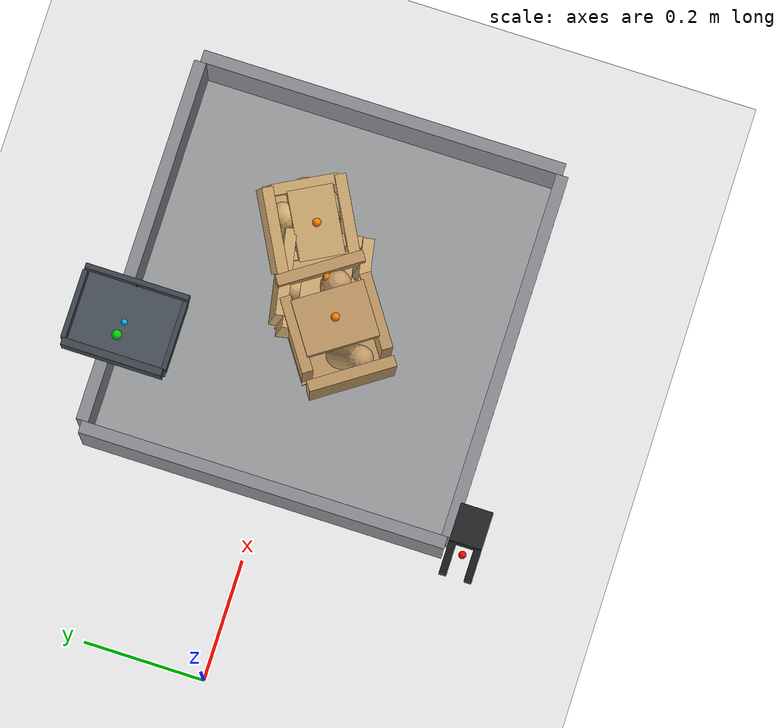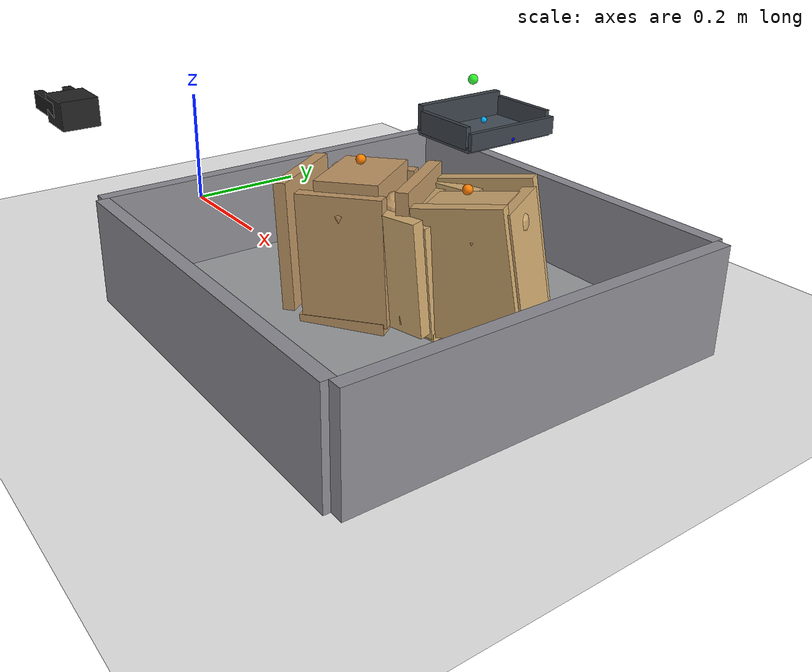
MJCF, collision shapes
<mujoco model="low_fill_top_collapsed_partially_buried_ep0_try0">
  <compiler angle="radian" coordinate="local" inertiafromgeom="true" meshdir="D:/Michael/2025/01.Research/01.Parceldetection/16.Pybullet/bullet3-master (1)/bullet3-master/examples/pybullet/examples/DeformableTest/Sackcodex2/object"/>
  <option timestep="0.002" gravity="0 0 -9.81" integrator="implicitfast" iterations="100" tolerance="1e-8"/>
  <size memory="768M" nconmax="12000"/>

  <visual>
    <global azimuth="128" elevation="-20"/>
    <headlight ambient="0.34 0.34 0.34" diffuse="0.78 0.78 0.78" specular="0.15 0.15 0.15"/>
    <rgba haze="0.11 0.13 0.18 1"/>
  </visual>

  <default>
    <geom condim="4" friction="1.15 0.03 0.01" margin="0.003" solimp="0.93 0.98 0.003" solref="0.012 1"/>
    <joint damping="1.2" armature="0.002"/>
    <position kp="2500" forcelimited="true" forcerange="-420 420"/>
    <motor ctrllimited="true"/>
  </default>

  <asset>
    <mesh name="sack_0_visual_mesh" file="sack10.obj" scale="0.0714 0.0714 0.0742"/>
    <mesh name="sack_1_visual_mesh" file="sack.obj" scale="0.0693 0.0693 0.0702"/>
    <mesh name="sack_2_visual_mesh" file="sack3.obj" scale="0.0735 0.0735 0.0762"/>
  </asset>

  <worldbody>
    <light name="key" pos="0.85 0.15 1.8" dir="-0.2 -0.1 -1" directional="true"/>
    <geom name="floor" type="plane" size="2 2 0.1" rgba="0.93 0.93 0.93 1"/>
    <geom name="work_pad" type="box" pos="0.62 0 0.012" size="0.30 0.30 0.012" rgba="0.60 0.61 0.62 1" friction="1.4 0.05 0.01"/>
    <geom name="corral_front" type="box" pos="0.93 0.00 0.08" size="0.010 0.30 0.08" rgba="0.55 0.55 0.58 0.22" friction="1.0 0.03 0.01"/>
    <geom name="corral_back" type="box" pos="0.31 0.00 0.08" size="0.010 0.30 0.08" rgba="0.55 0.55 0.58 0.18" friction="1.0 0.03 0.01"/>
    <geom name="corral_left" type="box" pos="0.62 0.30 0.08" size="0.30 0.010 0.08" rgba="0.55 0.55 0.58 0.14" friction="1.0 0.03 0.01"/>
    <geom name="corral_right" type="box" pos="0.62 -0.30 0.08" size="0.30 0.010 0.08" rgba="0.55 0.55 0.58 0.14" friction="1.0 0.03 0.01"/>
    <camera name="overview" pos="1.22 0.00 0.92" xyaxes="0 1 0 -0.46 0 0.88"/>

    <body name="gripper_mocap" mocap="true" pos="0.36 -0.33 0.30" quat="0.707107 0 -0.707107 0"/>
    <body name="scoop_mocap" mocap="true" pos="0.42 0.28 0.20" quat="1 0 0 0"/>

    <body name="gripper_ctrl_base" pos="0.36 -0.33 0.30">
      <inertial pos="0 0 0" mass="0.001" diaginertia="1e-6 1e-6 1e-6"/>
      <joint name="gripper_ctrl_x" type="slide" axis="1 0 0" limited="true" range="0.20 1.00"/>
      <body name="gripper_ctrl_y_body">
        <inertial pos="0 0 0" mass="0.001" diaginertia="1e-6 1e-6 1e-6"/>
        <joint name="gripper_ctrl_y" type="slide" axis="0 1 0" limited="true" range="-0.60 0.60"/>
        <body name="gripper_ctrl_z_body">
          <inertial pos="0 0 0" mass="0.001" diaginertia="1e-6 1e-6 1e-6"/>
          <joint name="gripper_ctrl_z" type="slide" axis="0 0 1" limited="true" range="0.04 0.70"/>
          <body name="gripper_ctrl_yaw_body">
            <inertial pos="0 0 0" mass="0.001" diaginertia="1e-6 1e-6 1e-6"/>
            <joint name="gripper_ctrl_yaw" type="hinge" axis="0 0 1" limited="true" range="-3.1416 3.1416"/>
            <body name="gripper_ctrl_pitch_body">
              <inertial pos="0 0 0" mass="0.001" diaginertia="1e-6 1e-6 1e-6"/>
              <joint name="gripper_ctrl_pitch" type="hinge" axis="0 1 0" limited="true" range="-3.1416 3.1416"/>
              <body name="gripper_ctrl_roll_body">
                <inertial pos="0 0 0" mass="0.001" diaginertia="1e-6 1e-6 1e-6"/>
                <joint name="gripper_ctrl_roll" type="hinge" axis="1 0 0" limited="true" range="-3.1416 3.1416"/>
              </body>
            </body>
          </body>
        </body>
      </body>
    </body>

    <body name="scoop_ctrl_base" pos="0.42 0.28 0.20">
      <inertial pos="0 0 0" mass="0.001" diaginertia="1e-6 1e-6 1e-6"/>
      <joint name="scoop_ctrl_x" type="slide" axis="1 0 0" limited="true" range="0.20 1.00"/>
      <body name="scoop_ctrl_y_body">
        <inertial pos="0 0 0" mass="0.001" diaginertia="1e-6 1e-6 1e-6"/>
        <joint name="scoop_ctrl_y" type="slide" axis="0 1 0" limited="true" range="-0.60 0.60"/>
        <body name="scoop_ctrl_z_body">
          <inertial pos="0 0 0" mass="0.001" diaginertia="1e-6 1e-6 1e-6"/>
          <joint name="scoop_ctrl_z" type="slide" axis="0 0 1" limited="true" range="0.04 0.70"/>
          <body name="scoop_ctrl_yaw_body">
            <inertial pos="0 0 0" mass="0.001" diaginertia="1e-6 1e-6 1e-6"/>
            <joint name="scoop_ctrl_yaw" type="hinge" axis="0 0 1" limited="true" range="-3.1416 3.1416"/>
            <body name="scoop_ctrl_pitch_body">
              <inertial pos="0 0 0" mass="0.001" diaginertia="1e-6 1e-6 1e-6"/>
              <joint name="scoop_ctrl_pitch" type="hinge" axis="0 1 0" limited="true" range="-3.1416 3.1416"/>
              <body name="scoop_ctrl_roll_body">
                <inertial pos="0 0 0" mass="0.001" diaginertia="1e-6 1e-6 1e-6"/>
                <joint name="scoop_ctrl_roll" type="hinge" axis="1 0 0" limited="true" range="-3.1416 3.1416"/>
              </body>
            </body>
          </body>
        </body>
      </body>
    </body>

    <body name="gripper_tool" pos="0.36 -0.33 0.30" quat="0.707107 0 -0.707107 0">
      <freejoint name="gripper_tool_free"/>
      <inertial pos="0 0 0.04" mass="0.08" diaginertia="0.0002 0.0002 0.0002"/>
      <geom name="gripper_palm" type="box" pos="0 0 0.030" size="0.020 0.026 0.030" rgba="0.14 0.14 0.14 1"/>
      <body name="left_finger_body" pos="0 0 0.072">
        <joint name="left_finger_slide" type="slide" axis="0 1 0" limited="true" range="0.010 0.040" damping="12"/>
        <geom name="left_finger_geom" type="box" pos="0 0.020 0" size="0.012 0.006 0.040" rgba="0.10 0.10 0.10 1" friction="2.2 0.05 0.01"/>
      </body>
      <body name="right_finger_body" pos="0 0 0.072">
        <joint name="right_finger_slide" type="slide" axis="0 -1 0" limited="true" range="0.010 0.040" damping="12"/>
        <geom name="right_finger_geom" type="box" pos="0 -0.020 0" size="0.012 0.006 0.040" rgba="0.10 0.10 0.10 1" friction="2.2 0.05 0.01"/>
      </body>
      <site name="gripper_pinch_site" pos="0 0 0.074" size="0.006" rgba="1 0 0 1"/>
    </body>

    <body name="scoop_tool" pos="0.42 0.28 0.20" quat="1 0 0 0">
      <freejoint name="scoop_tool_free"/>
      <inertial pos="0 0 0.02" mass="0.10" diaginertia="0.0003 0.0003 0.0003"/>
      <geom name="scoop_plate" type="box" pos="0.062 0 0" size="0.062 0.085 0.004" rgba="0.28 0.31 0.35 1" friction="1.7 0.05 0.01"/>
      <geom name="scoop_lip" type="box" pos="0.126 0 0.014" size="0.004 0.085 0.014" rgba="0.24 0.27 0.30 1" friction="1.7 0.05 0.01"/>
      <geom name="scoop_left_rail" type="box" pos="0.062 0.082 0.018" size="0.056 0.004 0.018" rgba="0.24 0.27 0.30 1"/>
      <geom name="scoop_right_rail" type="box" pos="0.062 -0.082 0.018" size="0.056 0.004 0.018" rgba="0.24 0.27 0.30 1"/>
      <geom name="scoop_backstop" type="box" pos="0.000 0 0.022" size="0.006 0.082 0.022" rgba="0.24 0.27 0.30 1"/>
      <site name="scoop_tip_site" pos="0.126 0 0.005" size="0.005" rgba="0 0 1 1"/>
      <site name="scoop_center_site" pos="0.060 0 0.020" size="0.005" rgba="0 0.7 1 1"/>
      <site name="score_overlay_site" pos="0.030 0 0.080" size="0.008" rgba="0 1 0 0.8"/>
    </body>

    <body name="sack_0" pos="0.6481 0.0153 0.1097" euler="0.0875 -0.0246 -2.9508">
      <freejoint name="sack_0_free"/>

      <geom name="sack_0_visual" type="mesh" mesh="sack_0_visual_mesh" rgba="0.820 0.670 0.440 0.92" contype="0" conaffinity="0"/>
      <site name="sack_0_center_site" pos="0 0 0.000" size="0.006" rgba="0 1 0 1"/>
      <site name="sack_0_top_site" pos="0 0.0060 0.0883" size="0.007" rgba="1 0.5 0 1"/>
      <site name="sack_0_side_site" pos="0.0140 0.0487 0.018" size="0.007" rgba="1 0.8 0 1"/>

      <geom name="sack_0_core_geom" type="ellipsoid" pos="0 0 0.0057" size="0.0454 0.0354 0.0675" mass="0.6764" rgba="0.820 0.670 0.440 0.12" friction="1.0 0.03 0.01"/>
      <geom name="sack_0_core_front" type="capsule" fromto="-0.0060 0 -0.0200 0.0590 0 0.0600" size="0.0300" mass="0.1611" rgba="0.820 0.670 0.440 0.10"/>
      <geom name="sack_0_core_left" type="capsule" fromto="-0.008 0.0243 -0.010 0.018 0.0423 0.060" size="0.0240" mass="0.2899" rgba="0.820 0.670 0.440 0.10"/>
      <geom name="sack_0_core_right" type="capsule" fromto="-0.006 -0.0243 -0.008 0.020 -0.0443 0.054" size="0.0221" mass="0.2899" rgba="0.820 0.670 0.440 0.10"/>

      <body name="sack_0_bottom_support_proxy_body" pos="0 -0.0021 -0.0842">
        <joint name="sack_0_bottom_x" type="slide" axis="1 0 0" limited="true" range="-0.012 0.012" damping="18" stiffness="459.1"/>
        <joint name="sack_0_bottom_y" type="slide" axis="0 1 0" limited="true" range="-0.012 0.012" damping="18" stiffness="459.1"/>
        <joint name="sack_0_bottom_z" type="slide" axis="0 0 1" limited="true" range="-0.008 0.020" damping="24" stiffness="565.5"/>
        <geom name="sack_0_bottom_support_proxy" type="box" size="0.0729 0.0547 0.0100" mass="0.1288" rgba="0.820 0.670 0.440 0.34" friction="1.55 0.05 0.01"/>
      </body>

      <body name="sack_0_top_grasp_proxy_body" pos="0.0140 0.0060 0.0583">
        <joint name="sack_0_top_x" type="slide" axis="1 0 0" limited="true" range="-0.018 0.018" damping="12" stiffness="176.3"/>
        <joint name="sack_0_top_y" type="slide" axis="0 1 0" limited="true" range="-0.018 0.018" damping="12" stiffness="176.3"/>
        <joint name="sack_0_top_z" type="slide" axis="0 0 1" limited="true" range="-0.040 0.010" damping="14" stiffness="129.7"/>
        <geom name="sack_0_top_grasp_proxy" type="box" size="0.0569 0.0387 0.0150" mass="0.0966" rgba="0.820 0.670 0.440 0.26" friction="2.2 0.05 0.01"/>
      </body>

      <body name="sack_0_left_side_proxy_body" pos="0 0.0631 0.010">
        <joint name="sack_0_left_side_slide" type="slide" axis="0 -1 0" limited="true" range="-0.028 0.016" damping="16" stiffness="228.3"/>
        <geom name="sack_0_left_side_proxy" type="box" size="0.0689 0.0090 0.0822" mass="0.0966" rgba="0.820 0.670 0.440 0.24"/>
      </body>

      <body name="sack_0_right_side_proxy_body" pos="0 -0.0591 0.010">
        <joint name="sack_0_right_side_slide" type="slide" axis="0 1 0" limited="true" range="-0.028 0.016" damping="16" stiffness="211.7"/>
        <geom name="sack_0_right_side_proxy" type="box" size="0.0689 0.0090 0.0822" mass="0.0966" rgba="0.820 0.670 0.440 0.24"/>
      </body>

      <body name="sack_0_front_proxy_body" pos="0.0769 0 0.000">
        <joint name="sack_0_front_slide" type="slide" axis="-1 0 0" limited="true" range="-0.022 0.012" damping="15" stiffness="219.5"/>
        <geom name="sack_0_front_support_proxy" type="box" size="0.0090 0.0547 0.0802" mass="0.0805" rgba="0.820 0.670 0.440 0.22"/>
      </body>

      <body name="sack_0_back_proxy_body" pos="-0.0629 0 0.000">
        <joint name="sack_0_back_slide" type="slide" axis="1 0 0" limited="true" range="-0.022 0.012" damping="15" stiffness="202.9"/>
        <geom name="sack_0_back_support_proxy" type="box" size="0.0090 0.0547 0.0802" mass="0.0805" rgba="0.820 0.670 0.440 0.22"/>
      </body>

      <body name="sack_0_shape_proxy_body" pos="0.0084 0.0163 0.0403">
        <joint name="sack_0_bulge_y" type="slide" axis="0 1 0" limited="true" range="-0.020 0.020" damping="8" stiffness="100.6"/>
        <joint name="sack_0_bulge_z" type="slide" axis="0 0 1" limited="true" range="-0.014 0.028" damping="8" stiffness="100.5"/>
        <geom name="sack_0_shape_proxy" type="ellipsoid" size="0.0200 0.0161 0.0263" mass="0.0644" rgba="0.820 0.670 0.440 0.28"/>
      </body>
    </body>

    <body name="sack_1" pos="0.7311 0.0590 0.1197" euler="0.1057 -0.1276 0.5033">
      <freejoint name="sack_1_free"/>

      <geom name="sack_1_visual" type="mesh" mesh="sack_1_visual_mesh" rgba="0.820 0.670 0.440 0.92" contype="0" conaffinity="0"/>
      <site name="sack_1_center_site" pos="0 0 0.000" size="0.006" rgba="0 1 0 1"/>
      <site name="sack_1_top_site" pos="0 -0.0060 0.1059" size="0.007" rgba="1 0.5 0 1"/>
      <site name="sack_1_side_site" pos="0.0000 -0.0465 0.018" size="0.007" rgba="1 0.8 0 1"/>

      <geom name="sack_1_core_geom" type="ellipsoid" pos="0 0 0.0057" size="0.0447 0.0344 0.0660" mass="0.8050" rgba="0.820 0.670 0.440 0.12" friction="1.0 0.03 0.01"/>
      <geom name="sack_1_core_front" type="capsule" fromto="-0.0200 0 -0.0200 0.0450 0 0.0600" size="0.0291" mass="0.1917" rgba="0.820 0.670 0.440 0.10"/>
      <geom name="sack_1_core_left" type="capsule" fromto="-0.008 0.0233 -0.010 0.018 0.0413 0.060" size="0.0240" mass="0.3450" rgba="0.820 0.670 0.440 0.10"/>
      <geom name="sack_1_core_right" type="capsule" fromto="-0.006 -0.0233 -0.008 0.020 -0.0433 0.054" size="0.0220" mass="0.3450" rgba="0.820 0.670 0.440 0.10"/>

      <body name="sack_1_bottom_support_proxy_body" pos="0 0.0046 -0.0935">
        <joint name="sack_1_bottom_x" type="slide" axis="1 0 0" limited="true" range="-0.012 0.012" damping="18" stiffness="432.5"/>
        <joint name="sack_1_bottom_y" type="slide" axis="0 1 0" limited="true" range="-0.012 0.012" damping="18" stiffness="432.5"/>
        <joint name="sack_1_bottom_z" type="slide" axis="0 0 1" limited="true" range="-0.008 0.020" damping="24" stiffness="533.1"/>
        <geom name="sack_1_bottom_support_proxy" type="box" size="0.0721 0.0525 0.0100" mass="0.1533" rgba="0.820 0.670 0.440 0.34" friction="1.55 0.05 0.01"/>
      </body>

      <body name="sack_1_top_grasp_proxy_body" pos="0.0000 -0.0060 0.0759">
        <joint name="sack_1_top_x" type="slide" axis="1 0 0" limited="true" range="-0.018 0.018" damping="12" stiffness="166.0"/>
        <joint name="sack_1_top_y" type="slide" axis="0 1 0" limited="true" range="-0.018 0.018" damping="12" stiffness="166.0"/>
        <joint name="sack_1_top_z" type="slide" axis="0 0 1" limited="true" range="-0.040 0.010" damping="14" stiffness="120.8"/>
        <geom name="sack_1_top_grasp_proxy" type="box" size="0.0561 0.0365 0.0150" mass="0.1150" rgba="0.820 0.670 0.440 0.26" friction="2.2 0.05 0.01"/>
      </body>

      <body name="sack_1_left_side_proxy_body" pos="0 0.0598 0.010">
        <joint name="sack_1_left_side_slide" type="slide" axis="0 -1 0" limited="true" range="-0.028 0.016" damping="16" stiffness="210.8"/>
        <geom name="sack_1_left_side_proxy" type="box" size="0.0681 0.0090 0.0915" mass="0.1150" rgba="0.820 0.670 0.440 0.24"/>
      </body>

      <body name="sack_1_right_side_proxy_body" pos="0 -0.0558 0.010">
        <joint name="sack_1_right_side_slide" type="slide" axis="0 1 0" limited="true" range="-0.028 0.016" damping="16" stiffness="195.7"/>
        <geom name="sack_1_right_side_proxy" type="box" size="0.0681 0.0090 0.0915" mass="0.1150" rgba="0.820 0.670 0.440 0.24"/>
      </body>

      <body name="sack_1_front_proxy_body" pos="0.0621 0 0.000">
        <joint name="sack_1_front_slide" type="slide" axis="-1 0 0" limited="true" range="-0.022 0.012" damping="15" stiffness="206.3"/>
        <geom name="sack_1_front_support_proxy" type="box" size="0.0090 0.0525 0.0895" mass="0.0958" rgba="0.820 0.670 0.440 0.22"/>
      </body>

      <body name="sack_1_back_proxy_body" pos="-0.0621 0 0.000">
        <joint name="sack_1_back_slide" type="slide" axis="1 0 0" limited="true" range="-0.022 0.012" damping="15" stiffness="191.1"/>
        <geom name="sack_1_back_support_proxy" type="box" size="0.0090 0.0525 0.0895" mass="0.0958" rgba="0.820 0.670 0.440 0.22"/>
      </body>

      <body name="sack_1_shape_proxy_body" pos="0.0000 -0.0153 0.0492">
        <joint name="sack_1_bulge_y" type="slide" axis="0 1 0" limited="true" range="-0.020 0.020" damping="8" stiffness="118.3"/>
        <joint name="sack_1_bulge_z" type="slide" axis="0 0 1" limited="true" range="-0.014 0.028" damping="8" stiffness="113.7"/>
        <geom name="sack_1_shape_proxy" type="ellipsoid" size="0.0200 0.0161 0.0262" mass="0.0767" rgba="0.820 0.670 0.440 0.28"/>
      </body>
    </body>

    <body name="sack_2" pos="0.5859 -0.0321 0.1214" euler="0.0198 -0.0500 -0.9736">
      <freejoint name="sack_2_free"/>

      <geom name="sack_2_visual" type="mesh" mesh="sack_2_visual_mesh" rgba="0.760 0.600 0.400 0.92" contype="0" conaffinity="0"/>
      <site name="sack_2_center_site" pos="0 0 0.000" size="0.006" rgba="0 1 0 1"/>
      <site name="sack_2_top_site" pos="0 0.0060 0.1205" size="0.007" rgba="1 0.5 0 1"/>
      <site name="sack_2_side_site" pos="0.0000 0.0557 0.018" size="0.007" rgba="1 0.8 0 1"/>

      <geom name="sack_2_core_geom" type="ellipsoid" pos="0 0 0.0058" size="0.0443 0.0343 0.0774" mass="0.8389" rgba="0.760 0.600 0.400 0.12" friction="1.0 0.03 0.01"/>
      <geom name="sack_2_core_front" type="capsule" fromto="-0.0200 0 -0.0200 0.0450 0 0.0600" size="0.0299" mass="0.1997" rgba="0.760 0.600 0.400 0.10"/>
      <geom name="sack_2_core_left" type="capsule" fromto="-0.008 0.0422 -0.010 0.018 0.0602 0.060" size="0.0242" mass="0.3595" rgba="0.760 0.600 0.400 0.10"/>
      <geom name="sack_2_core_right" type="capsule" fromto="-0.006 -0.0422 -0.008 0.020 -0.0622 0.054" size="0.0223" mass="0.3595" rgba="0.760 0.600 0.400 0.10"/>

      <body name="sack_2_bottom_support_proxy_body" pos="0 -0.0046 -0.0947">
        <joint name="sack_2_bottom_x" type="slide" axis="1 0 0" limited="true" range="-0.012 0.012" damping="18" stiffness="456.5"/>
        <joint name="sack_2_bottom_y" type="slide" axis="0 1 0" limited="true" range="-0.012 0.012" damping="18" stiffness="456.5"/>
        <joint name="sack_2_bottom_z" type="slide" axis="0 0 1" limited="true" range="-0.008 0.020" damping="24" stiffness="562.4"/>
        <geom name="sack_2_bottom_support_proxy" type="box" size="0.0749 0.0617 0.0100" mass="0.1598" rgba="0.760 0.600 0.400 0.34" friction="1.55 0.05 0.01"/>
      </body>

      <body name="sack_2_top_grasp_proxy_body" pos="0.0000 0.0060 0.0905">
        <joint name="sack_2_top_x" type="slide" axis="1 0 0" limited="true" range="-0.018 0.018" damping="12" stiffness="175.3"/>
        <joint name="sack_2_top_y" type="slide" axis="0 1 0" limited="true" range="-0.018 0.018" damping="12" stiffness="175.3"/>
        <joint name="sack_2_top_z" type="slide" axis="0 0 1" limited="true" range="-0.040 0.010" damping="14" stiffness="128.8"/>
        <geom name="sack_2_top_grasp_proxy" type="box" size="0.0589 0.0457 0.0150" mass="0.1198" rgba="0.760 0.600 0.400 0.26" friction="2.2 0.05 0.01"/>
      </body>

      <body name="sack_2_left_side_proxy_body" pos="0 0.0879 0.010">
        <joint name="sack_2_left_side_slide" type="slide" axis="0 -1 0" limited="true" range="-0.028 0.016" damping="16" stiffness="227.2"/>
        <geom name="sack_2_left_side_proxy" type="box" size="0.0709 0.0090 0.0927" mass="0.1198" rgba="0.760 0.600 0.400 0.24"/>
      </body>

      <body name="sack_2_right_side_proxy_body" pos="0 -0.0839 0.010">
        <joint name="sack_2_right_side_slide" type="slide" axis="0 1 0" limited="true" range="-0.028 0.016" damping="16" stiffness="210.7"/>
        <geom name="sack_2_right_side_proxy" type="box" size="0.0709 0.0090 0.0927" mass="0.1198" rgba="0.760 0.600 0.400 0.24"/>
      </body>

      <body name="sack_2_front_proxy_body" pos="0.0649 0 0.000">
        <joint name="sack_2_front_slide" type="slide" axis="-1 0 0" limited="true" range="-0.022 0.012" damping="15" stiffness="218.3"/>
        <geom name="sack_2_front_support_proxy" type="box" size="0.0090 0.0617 0.0907" mass="0.0999" rgba="0.760 0.600 0.400 0.22"/>
      </body>

      <body name="sack_2_back_proxy_body" pos="-0.0649 0 0.000">
        <joint name="sack_2_back_slide" type="slide" axis="1 0 0" limited="true" range="-0.022 0.012" damping="15" stiffness="201.8"/>
        <geom name="sack_2_back_support_proxy" type="box" size="0.0090 0.0617 0.0907" mass="0.0999" rgba="0.760 0.600 0.400 0.22"/>
      </body>

      <body name="sack_2_shape_proxy_body" pos="0.0000 0.0342 0.0412">
        <joint name="sack_2_bulge_y" type="slide" axis="0 1 0" limited="true" range="-0.020 0.020" damping="8" stiffness="102.3"/>
        <joint name="sack_2_bulge_z" type="slide" axis="0 0 1" limited="true" range="-0.014 0.028" damping="8" stiffness="101.7"/>
        <geom name="sack_2_shape_proxy" type="ellipsoid" size="0.0202 0.0164 0.0261" mass="0.0799" rgba="0.760 0.600 0.400 0.28"/>
      </body>
    </body>
  </worldbody>

  <equality>
    <weld name="gripper_follow" body1="gripper_mocap" body2="gripper_tool" torquescale="400" solref="0.002 1" solimp="0.99 0.999 0.0001"/>
    <weld name="scoop_follow" body1="scoop_mocap" body2="scoop_tool" torquescale="500" solref="0.002 1" solimp="0.99 0.999 0.0001"/>
  </equality>

  <actuator>
    <position name="gripper_ctrl_x_act" joint="gripper_ctrl_x" ctrlrange="0.20 1.00" kp="3500" forcerange="-300 300"/>
    <position name="gripper_ctrl_y_act" joint="gripper_ctrl_y" ctrlrange="-0.60 0.60" kp="3500" forcerange="-300 300"/>
    <position name="gripper_ctrl_z_act" joint="gripper_ctrl_z" ctrlrange="0.04 0.70" kp="3500" forcerange="-300 300"/>
    <position name="gripper_ctrl_yaw_act" joint="gripper_ctrl_yaw" ctrlrange="-3.1416 3.1416" kp="1800" forcerange="-250 250"/>
    <position name="gripper_ctrl_pitch_act" joint="gripper_ctrl_pitch" ctrlrange="-3.1416 3.1416" kp="1800" forcerange="-250 250"/>
    <position name="gripper_ctrl_roll_act" joint="gripper_ctrl_roll" ctrlrange="-3.1416 3.1416" kp="1800" forcerange="-250 250"/>
    <position name="scoop_ctrl_x_act" joint="scoop_ctrl_x" ctrlrange="0.20 1.00" kp="3500" forcerange="-300 300"/>
    <position name="scoop_ctrl_y_act" joint="scoop_ctrl_y" ctrlrange="-0.60 0.60" kp="3500" forcerange="-300 300"/>
    <position name="scoop_ctrl_z_act" joint="scoop_ctrl_z" ctrlrange="0.04 0.70" kp="3500" forcerange="-300 300"/>
    <position name="scoop_ctrl_yaw_act" joint="scoop_ctrl_yaw" ctrlrange="-3.1416 3.1416" kp="1800" forcerange="-250 250"/>
    <position name="scoop_ctrl_pitch_act" joint="scoop_ctrl_pitch" ctrlrange="-3.1416 3.1416" kp="1800" forcerange="-250 250"/>
    <position name="scoop_ctrl_roll_act" joint="scoop_ctrl_roll" ctrlrange="-3.1416 3.1416" kp="1800" forcerange="-250 250"/>
    <position name="left_finger_act" joint="left_finger_slide" ctrlrange="0.010 0.040" kp="2800" forcerange="-220 220"/>
    <position name="right_finger_act" joint="right_finger_slide" ctrlrange="0.010 0.040" kp="2800" forcerange="-220 220"/>
  </actuator>

  <contact>
    <exclude body1="sack_0_top_grasp_proxy_body" body2="sack_0_left_side_proxy_body"/>
    <exclude body1="sack_0_top_grasp_proxy_body" body2="sack_0_right_side_proxy_body"/>
    <exclude body1="sack_1_top_grasp_proxy_body" body2="sack_1_left_side_proxy_body"/>
    <exclude body1="sack_1_top_grasp_proxy_body" body2="sack_1_right_side_proxy_body"/>
    <exclude body1="sack_2_top_grasp_proxy_body" body2="sack_2_left_side_proxy_body"/>
    <exclude body1="sack_2_top_grasp_proxy_body" body2="sack_2_right_side_proxy_body"/>
  </contact>
</mujoco>
